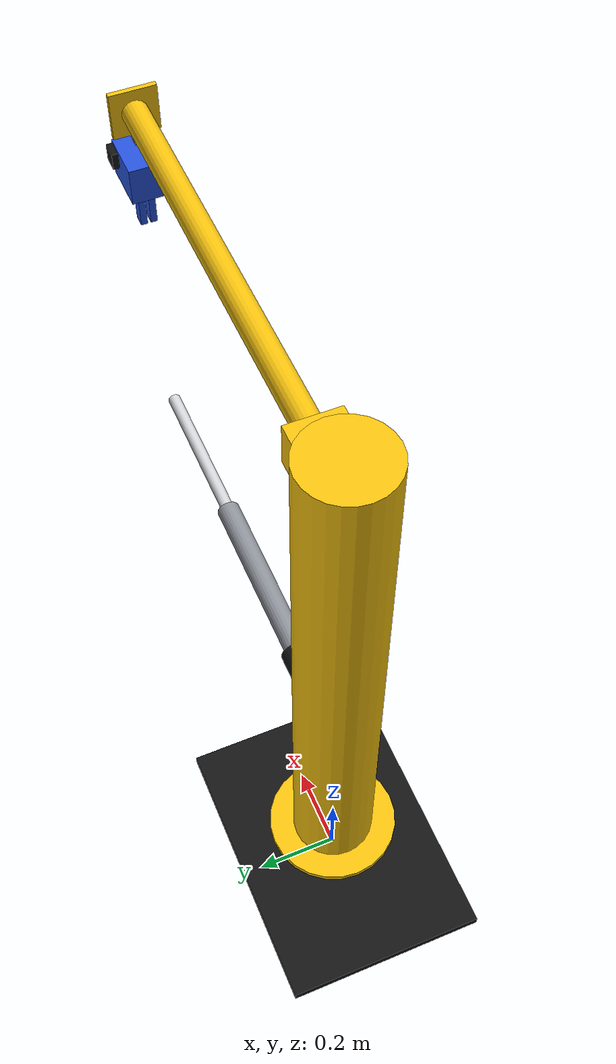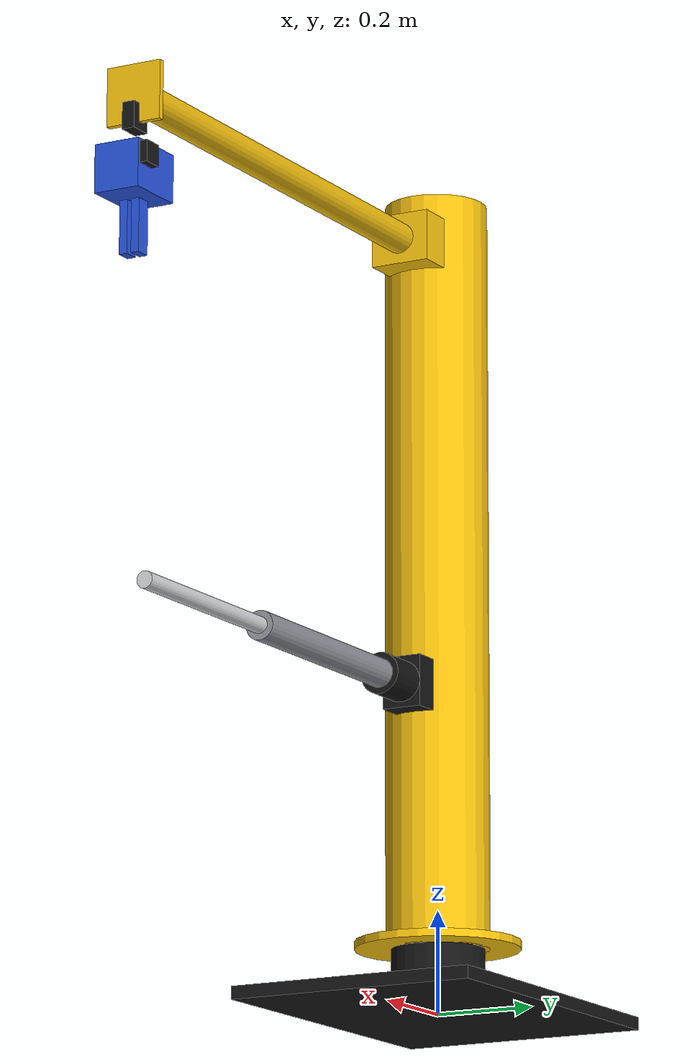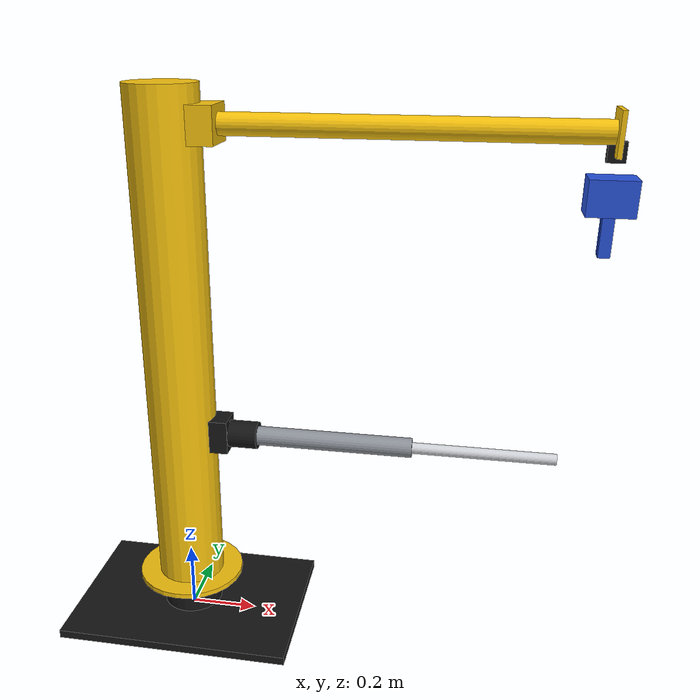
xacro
<?xml version="1.0"?>
<robot xmlns:xacro="http://www.ros.org/wiki/xacro" name="lathe_arm">

  <xacro:arg name="controllers" default="$(find lathe_arm_bringup)/config/controllers.yaml"/>

  <xacro:property name="base_h" value="0.125"/>     <!-- floor to top of slewing housing -->
  <xacro:property name="pivot_x" value="0.13"/>
  <xacro:property name="pivot_z" value="1.50"/>
  <xacro:property name="boom" value="1.00"/>
  <xacro:property name="col_r" value="0.10"/>
  <xacro:property name="col_top" value="1.60"/>
  <xacro:property name="act_low_z" value="0.62"/>
  <xacro:property name="act_body" value="0.55"/>
  <xacro:property name="act_rod" value="0.45"/>

  <material name="yellow"><color rgba="0.95 0.75 0.05 1"/></material>
  <material name="black"><color rgba="0.08 0.08 0.08 1"/></material>
  <material name="grey"><color rgba="0.55 0.57 0.6 1"/></material>
  <material name="silver"><color rgba="0.82 0.83 0.85 1"/></material>
  <material name="blue"><color rgba="0.15 0.32 0.85 1"/></material>

  <xacro:macro name="inertia_box" params="m x y z">
    <inertial>
      <mass value="${m}"/>
      <inertia ixx="${m*(y*y+z*z)/12}" ixy="0" ixz="0" iyy="${m*(x*x+z*z)/12}" iyz="0" izz="${m*(x*x+y*y)/12}"/>
    </inertial>
  </xacro:macro>

  <link name="world"/>

  <!-- base plate + slewing housing, bolted to the floor -->
  <link name="base_link">
    <visual>
      <origin xyz="0 0 0.0125"/>
      <geometry><box size="0.70 0.50 0.025"/></geometry>
      <material name="black"/>
    </visual>
    <visual>
      <origin xyz="0 0 0.075"/>
      <geometry><cylinder radius="0.09" length="0.10"/></geometry>
      <material name="black"/>
    </visual>
    <collision>
      <origin xyz="0 0 0.0125"/>
      <geometry><box size="0.70 0.50 0.025"/></geometry>
    </collision>
    <xacro:inertia_box m="40" x="0.7" y="0.5" z="0.1"/>
  </link>
  <joint name="world_fixed" type="fixed">
    <parent link="world"/>
    <child link="base_link"/>
  </joint>

  <!-- j1: the whole column turns on the slewing bearing -->
  <link name="column_link">
    <visual>
      <origin xyz="0 0 0.0075"/>
      <geometry><cylinder radius="0.16" length="0.015"/></geometry>
      <material name="yellow"/>
    </visual>
    <visual>
      <origin xyz="0 0 ${(col_top - base_h) / 2}"/>
      <geometry><cylinder radius="${col_r}" length="${col_top - base_h}"/></geometry>
      <material name="yellow"/>
    </visual>
    <!-- boom pivot bracket -->
    <visual>
      <origin xyz="${pivot_x - 0.02} 0 ${pivot_z - base_h}"/>
      <geometry><box size="0.08 0.12 0.10"/></geometry>
      <material name="yellow"/>
    </visual>
    <!-- actuator lower bracket -->
    <visual>
      <origin xyz="${pivot_x - 0.02} 0 ${act_low_z - base_h}"/>
      <geometry><box size="0.07 0.08 0.10"/></geometry>
      <material name="black"/>
    </visual>
    <collision>
      <origin xyz="0 0 ${(col_top - base_h) / 2}"/>
      <geometry><cylinder radius="${col_r}" length="${col_top - base_h}"/></geometry>
    </collision>
    <xacro:inertia_box m="30" x="0.2" y="0.2" z="1.5"/>
  </link>
  <joint name="j1_base_yaw" type="revolute">
    <parent link="base_link"/>
    <child link="column_link"/>
    <origin xyz="0 0 ${base_h}"/>
    <axis xyz="0 0 1"/>
    <limit lower="${-170*pi/180}" upper="${170*pi/180}" effort="400" velocity="0.6"/>
  </joint>

  <!-- j2: boom, lifted by the linear actuator -->
  <link name="boom_link">
    <visual>
      <origin xyz="${boom / 2} 0 0" rpy="0 ${pi/2} 0"/>
      <geometry><cylinder radius="0.03" length="${boom}"/></geometry>
      <material name="yellow"/>
    </visual>
    <!-- square end plate at the tip -->
    <visual>
      <origin xyz="${boom} 0 0"/>
      <geometry><box size="0.012 0.11 0.11"/></geometry>
      <material name="yellow"/>
    </visual>
    <collision>
      <origin xyz="${boom / 2} 0 0" rpy="0 ${pi/2} 0"/>
      <geometry><cylinder radius="0.03" length="${boom}"/></geometry>
    </collision>
    <xacro:inertia_box m="6" x="1.0" y="0.06" z="0.06"/>
  </link>
  <joint name="j2_boom_lift" type="revolute">
    <parent link="column_link"/>
    <child link="boom_link"/>
    <origin xyz="${pivot_x} 0 ${pivot_z - base_h}"/>
    <axis xyz="0 -1 0"/>
    <limit lower="${-30*pi/180}" upper="${45*pi/180}" effort="600" velocity="0.4"/>
  </joint>

  <!-- linear actuator, drawn only (see linkage_node) -->
  <link name="act_body">
    <visual>
      <origin xyz="${act_body / 2} 0 0" rpy="0 ${pi/2} 0"/>
      <geometry><cylinder radius="0.028" length="${act_body}"/></geometry>
      <material name="grey"/>
    </visual>
    <visual>
      <origin xyz="0.05 0 0" rpy="0 ${pi/2} 0"/>
      <geometry><cylinder radius="0.04" length="0.10"/></geometry>
      <material name="black"/>
    </visual>
    <xacro:inertia_box m="0.5" x="0.55" y="0.06" z="0.06"/>
  </link>
  <joint name="act_pitch" type="revolute">
    <parent link="column_link"/>
    <child link="act_body"/>
    <origin xyz="${pivot_x} 0 ${act_low_z - base_h}"/>
    <axis xyz="0 -1 0"/>
    <limit lower="0" upper="${pi}" effort="100" velocity="2"/>
  </joint>
  <link name="act_rod">
    <visual>
      <origin xyz="${act_rod / 2} 0 0" rpy="0 ${pi/2} 0"/>
      <geometry><cylinder radius="0.016" length="${act_rod}"/></geometry>
      <material name="silver"/>
    </visual>
    <xacro:inertia_box m="0.2" x="0.45" y="0.03" z="0.03"/>
  </link>
  <joint name="act_extend" type="prismatic">
    <parent link="act_body"/>
    <child link="act_rod"/>
    <origin xyz="0 0 0"/>
    <axis xyz="1 0 0"/>
    <limit lower="0.2" upper="0.8" effort="100" velocity="1"/>
  </joint>

  <!-- j3: wrist pitch servo at the boom tip -->
  <link name="wrist_link">
    <visual>
      <origin xyz="0 0 -0.045"/>
      <geometry><box size="0.045 0.025 0.05"/></geometry>
      <material name="black"/>
    </visual>
    <xacro:inertia_box m="0.15" x="0.05" y="0.03" z="0.05"/>
  </link>
  <joint name="j3_wrist_pitch" type="revolute">
    <parent link="boom_link"/>
    <child link="wrist_link"/>
    <origin xyz="${boom} 0 0"/>
    <axis xyz="0 -1 0"/>
    <limit lower="${-135*pi/180}" upper="${135*pi/180}" effort="10" velocity="2"/>
  </joint>

  <!-- j4: wrist roll servo, then the blue gripper body -->
  <link name="gripper_link">
    <visual>
      <origin xyz="0 0 -0.08"/>
      <geometry><box size="0.12 0.09 0.09"/></geometry>
      <material name="blue"/>
    </visual>
    <visual>
      <origin xyz="0.035 0.05 -0.06"/>
      <geometry><box size="0.04 0.02 0.04"/></geometry>
      <material name="black"/>
    </visual>
    <collision>
      <origin xyz="0 0 -0.08"/>
      <geometry><box size="0.12 0.09 0.09"/></geometry>
    </collision>
    <xacro:inertia_box m="0.3" x="0.12" y="0.09" z="0.09"/>
  </link>
  <joint name="j4_wrist_roll" type="revolute">
    <parent link="wrist_link"/>
    <child link="gripper_link"/>
    <origin xyz="0 0 -0.07"/>
    <axis xyz="0 0 1"/>
    <limit lower="${-pi/2}" upper="${pi/2}" effort="10" velocity="2"/>
  </joint>

  <!-- j5: fingers, each travels half of the opening. No collision: in sim the
       part is held by a detachable joint, not by finger friction. -->
  <xacro:macro name="finger" params="name sign joint">
    <link name="${name}">
      <visual>
        <origin xyz="0 ${sign * 0.008} -0.055"/>
        <geometry><box size="0.03 0.016 0.10"/></geometry>
        <material name="blue"/>
      </visual>
      <xacro:inertia_box m="0.03" x="0.03" y="0.016" z="0.10"/>
    </link>
    <joint name="${joint}" type="prismatic">
      <parent link="gripper_link"/>
      <child link="${name}"/>
      <origin xyz="0 ${sign * 0.004} -0.125"/>
      <axis xyz="0 ${sign} 0"/>
      <limit lower="0" upper="0.035" effort="20" velocity="0.1"/>
    </joint>
  </xacro:macro>
  <xacro:finger name="finger_left" sign="1" joint="j5_gripper"/>
  <xacro:finger name="finger_right" sign="-1" joint="j5_gripper_mirror"/>

  <!-- fingertip frame, 0.30 m below the wrist pitch axis -->
  <link name="tool_link"/>
  <joint name="tool_fixed" type="fixed">
    <parent link="gripper_link"/>
    <child link="tool_link"/>
    <origin xyz="0 0 -0.23"/>
  </joint>

  <ros2_control name="lathe_arm" type="system">
    <hardware>
      <plugin>gz_ros2_control/GazeboSimSystem</plugin>
    </hardware>
    <xacro:macro name="pos_joint" params="name initial">
      <joint name="${name}">
        <command_interface name="position"/>
        <state_interface name="position"><param name="initial_value">${initial}</param></state_interface>
        <state_interface name="velocity"/>
      </joint>
    </xacro:macro>
    <xacro:pos_joint name="j1_base_yaw" initial="0.0"/>
    <xacro:pos_joint name="j2_boom_lift" initial="0.0"/>
    <xacro:pos_joint name="j3_wrist_pitch" initial="0.0"/>
    <xacro:pos_joint name="j4_wrist_roll" initial="0.0"/>
    <xacro:pos_joint name="j5_gripper" initial="0.0"/>
    <xacro:pos_joint name="j5_gripper_mirror" initial="0.0"/>
    <xacro:pos_joint name="act_pitch" initial="1.192"/>
    <xacro:pos_joint name="act_extend" initial="0.497"/>
  </ros2_control>

  <gazebo>
    <plugin filename="gz_ros2_control-system" name="gz_ros2_control::GazeboSimROS2ControlPlugin">
      <parameters>$(arg controllers)</parameters>
    </plugin>
  </gazebo>

  <!-- picks up the part in lathe_cell.sdf; part_grasp attaches/detaches it -->
  <gazebo>
    <plugin filename="gz-sim-detachable-joint-system" name="gz::sim::systems::DetachableJoint">
      <parent_link>gripper_link</parent_link>
      <child_model>part</child_model>
      <child_link>link</child_link>
      <attach_topic>/part/attach</attach_topic>
      <detach_topic>/part/detach</detach_topic>
      <suppress_child_warning>true</suppress_child_warning>
    </plugin>
  </gazebo>

</robot>
